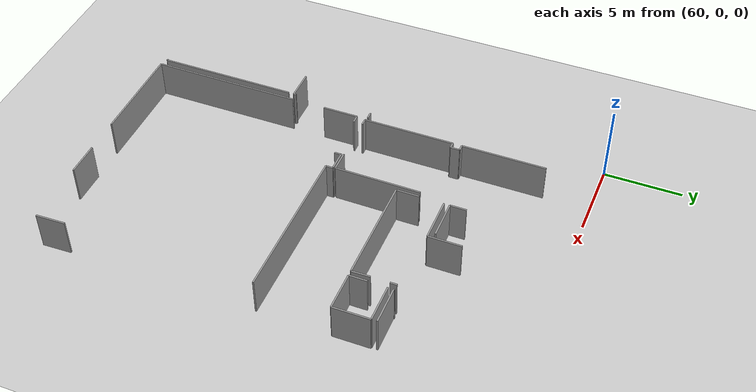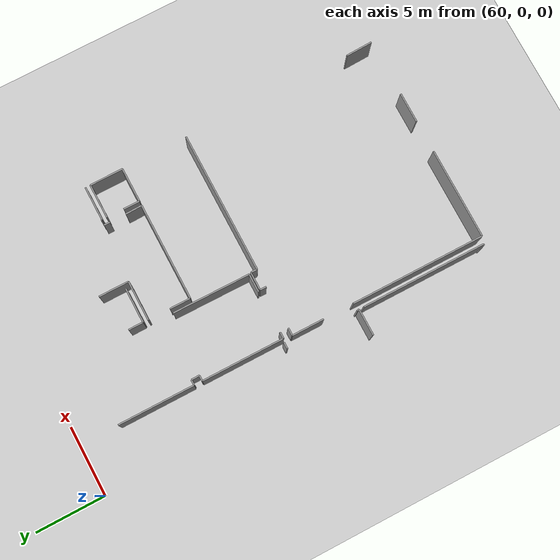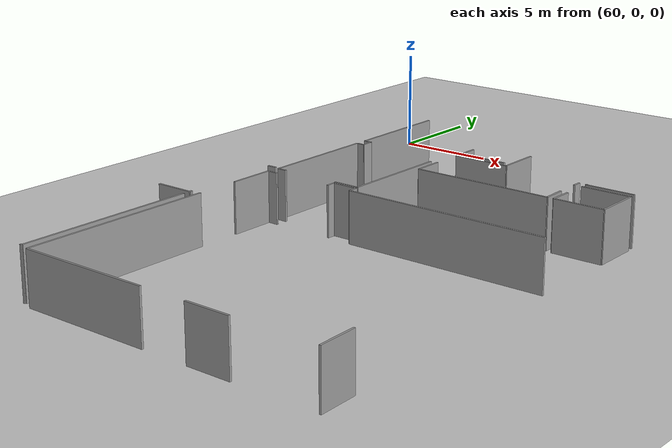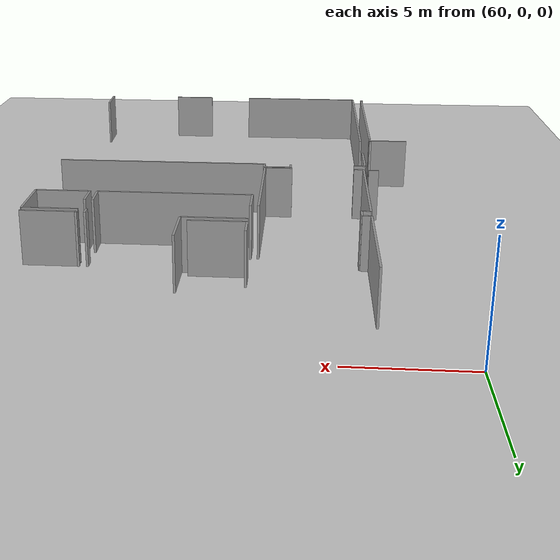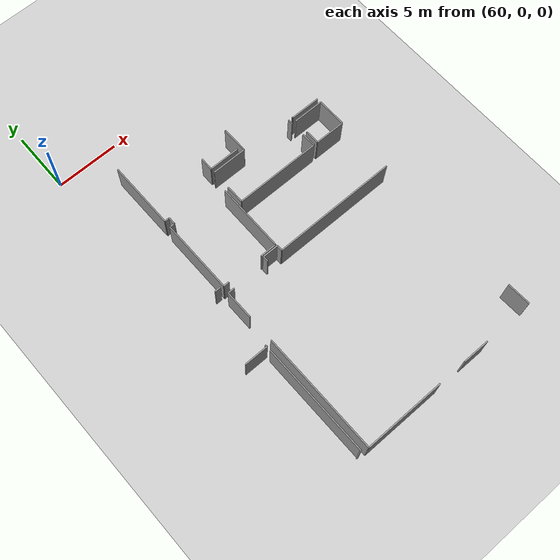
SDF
<sdf version="1.6">
 <world name="default">
  <model name="ground_plane">
   <static>1</static>
   <link name="link">
    <collision name="collision">
     <geometry><plane><normal>0 0 1</normal><size>100 100</size></plane></geometry>
     <surface><friction><ode><mu>100</mu><mu2>50</mu2></ode></friction></surface>
    </collision>
    <visual name="visual">
     <cast_shadows>0</cast_shadows>
     <geometry><plane><normal>0 0 1</normal><size>100 100</size></plane></geometry>
     <material>
      <script><uri>file://media/materials/scripts/gazebo.material</uri><name>Gazebo/Grey</name></script>
     </material>
    </visual>
   </link>
  </model>
  <model name="50010535_PLAN2">
   <static>1</static>
   <link name="Wall_360">
    <collision name="Wall_360_Collision">
     <geometry><box><size>0.478771052648 0.1 2.5</size></box></geometry>
     <pose>0.239385526324 0 1.25 0 0 0</pose>
    </collision>
    <visual name="Wall_360_Visual">
     <pose>0.239385526324 0 1.25 0 0 0</pose>
     <geometry><box><size>0.478771052648 0.1 2.5</size></box></geometry>
     <material>
      <script><uri>file://media/materials/scripts/gazebo.material</uri><name>Gazebo/Grey</name></script>
      <ambient>1 1 1 1</ambient>
     </material>
    </visual>
    <pose>165.815924728 -44.5561774553 0 0 0 3.14159265359</pose>
   </link>
   <link name="Wall_444">
    <collision name="Wall_444_Collision">
     <geometry><box><size>1.31407914716 0.1 2.5</size></box></geometry>
     <pose>0.657039573579 0 1.25 0 0 0</pose>
    </collision>
    <visual name="Wall_444_Visual">
     <pose>0.657039573579 0 1.25 0 0 0</pose>
     <geometry><box><size>1.31407914716 0.1 2.5</size></box></geometry>
     <material>
      <script><uri>file://media/materials/scripts/gazebo.material</uri><name>Gazebo/Grey</name></script>
      <ambient>1 1 1 1</ambient>
     </material>
    </visual>
    <pose>170.780506089 -44.6415633755 0 0 0 3.14159265359</pose>
   </link>
   <link name="Wall_445">
    <collision name="Wall_445_Collision">
     <geometry><box><size>0.46403181642 0.1 2.5</size></box></geometry>
     <pose>0.23201590821 0 1.25 0 0 0</pose>
    </collision>
    <visual name="Wall_445_Visual">
     <pose>0.23201590821 0 1.25 0 0 0</pose>
     <geometry><box><size>0.46403181642 0.1 2.5</size></box></geometry>
     <material>
      <script><uri>file://media/materials/scripts/gazebo.material</uri><name>Gazebo/Grey</name></script>
      <ambient>1 1 1 1</ambient>
     </material>
    </visual>
    <pose>166.512226578 -44.6415633755 0 0 0 3.14159265359</pose>
   </link>
   <link name="Wall_446">
    <collision name="Wall_446_Collision">
     <geometry><box><size>5.86926551591 0.1 2.5</size></box></geometry>
     <pose>2.93463275795 0 1.25 0 0 0</pose>
    </collision>
    <visual name="Wall_446_Visual">
     <pose>2.93463275795 0 1.25 0 0 0</pose>
     <geometry><box><size>5.86926551591 0.1 2.5</size></box></geometry>
     <material>
      <script><uri>file://media/materials/scripts/gazebo.material</uri><name>Gazebo/Grey</name></script>
      <ambient>1 1 1 1</ambient>
     </material>
    </visual>
    <pose>166.048194761 -44.6415633755 0 0 0 1.57079632679</pose>
   </link>
   <link name="Wall_447">
    <collision name="Wall_447_Collision">
     <geometry><box><size>0.399230001969 0.1 2.5</size></box></geometry>
     <pose>0.199615000985 0 1.25 0 0 0</pose>
    </collision>
    <visual name="Wall_447_Visual">
     <pose>0.199615000985 0 1.25 0 0 0</pose>
     <geometry><box><size>0.399230001969 0.1 2.5</size></box></geometry>
     <material>
      <script><uri>file://media/materials/scripts/gazebo.material</uri><name>Gazebo/Grey</name></script>
      <ambient>1 1 1 1</ambient>
     </material>
    </visual>
    <pose>166.048194761 -38.7722978596 0 0 0 0.0</pose>
   </link>
   <link name="Wall_448">
    <collision name="Wall_448_Collision">
     <geometry><box><size>0.587536451021 0.1 2.5</size></box></geometry>
     <pose>0.29376822551 0 1.25 0 0 0</pose>
    </collision>
    <visual name="Wall_448_Visual">
     <pose>0.29376822551 0 1.25 0 0 0</pose>
     <geometry><box><size>0.587536451021 0.1 2.5</size></box></geometry>
     <material>
      <script><uri>file://media/materials/scripts/gazebo.material</uri><name>Gazebo/Grey</name></script>
      <ambient>1 1 1 1</ambient>
     </material>
    </visual>
    <pose>166.447424763 -38.7722978596 0 0 0 1.57079632679</pose>
   </link>
   <link name="Wall_449">
    <collision name="Wall_449_Collision">
     <geometry><box><size>0.392368633381 0.1 2.5</size></box></geometry>
     <pose>0.19618431669 0 1.25 0 0 0</pose>
    </collision>
    <visual name="Wall_449_Visual">
     <pose>0.19618431669 0 1.25 0 0 0</pose>
     <geometry><box><size>0.392368633381 0.1 2.5</size></box></geometry>
     <material>
      <script><uri>file://media/materials/scripts/gazebo.material</uri><name>Gazebo/Grey</name></script>
      <ambient>1 1 1 1</ambient>
     </material>
    </visual>
    <pose>166.447424763 -38.1847614086 0 0 0 3.14159265359</pose>
   </link>
   <link name="Wall_450">
    <collision name="Wall_450_Collision">
     <geometry><box><size>5.41971881095 0.1 2.5</size></box></geometry>
     <pose>2.70985940548 0 1.25 0 0 0</pose>
    </collision>
    <visual name="Wall_450_Visual">
     <pose>2.70985940548 0 1.25 0 0 0</pose>
     <geometry><box><size>5.41971881095 0.1 2.5</size></box></geometry>
     <material>
      <script><uri>file://media/materials/scripts/gazebo.material</uri><name>Gazebo/Grey</name></script>
      <ambient>1 1 1 1</ambient>
     </material>
    </visual>
    <pose>166.05505613 -38.1847614086 0 0 0 1.57079632679</pose>
   </link>
   <link name="Wall_471">
    <collision name="Wall_471_Collision">
     <geometry><box><size>5.51260439163 0.1 2.5</size></box></geometry>
     <pose>2.75630219582 0 1.25 0 0 0</pose>
    </collision>
    <visual name="Wall_471_Visual">
     <pose>2.75630219582 0 1.25 0 0 0</pose>
     <geometry><box><size>5.51260439163 0.1 2.5</size></box></geometry>
     <material>
      <script><uri>file://media/materials/scripts/gazebo.material</uri><name>Gazebo/Grey</name></script>
      <ambient>1 1 1 1</ambient>
     </material>
    </visual>
    <pose>170.818370679 -39.1290890263 0 0 0 -1.57766511053</pose>
   </link>
   <link name="Wall_512">
    <collision name="Wall_512_Collision">
     <geometry><box><size>2.48457780347 0.1 2.5</size></box></geometry>
     <pose>1.24228890174 0 1.25 0 0 0</pose>
    </collision>
    <visual name="Wall_512_Visual">
     <pose>1.24228890174 0 1.25 0 0 0</pose>
     <geometry><box><size>2.48457780347 0.1 2.5</size></box></geometry>
     <material>
      <script><uri>file://media/materials/scripts/gazebo.material</uri><name>Gazebo/Grey</name></script>
      <ambient>1 1 1 1</ambient>
     </material>
    </visual>
    <pose>173.668634016 -37.1385297612 0 0 0 3.14159265359</pose>
   </link>
   <link name="Wall_513">
    <collision name="Wall_513_Collision">
     <geometry><box><size>1.04623164743 0.1 2.5</size></box></geometry>
     <pose>0.523115823714 0 1.25 0 0 0</pose>
    </collision>
    <visual name="Wall_513_Visual">
     <pose>0.523115823714 0 1.25 0 0 0</pose>
     <geometry><box><size>1.04623164743 0.1 2.5</size></box></geometry>
     <material>
      <script><uri>file://media/materials/scripts/gazebo.material</uri><name>Gazebo/Grey</name></script>
      <ambient>1 1 1 1</ambient>
     </material>
    </visual>
    <pose>171.184056212 -37.1385297612 0 0 0 1.57079632679</pose>
   </link>
   <link name="Wall_517">
    <collision name="Wall_517_Collision">
     <geometry><box><size>6.95590300058 0.1 2.5</size></box></geometry>
     <pose>3.47795150029 0 1.25 0 0 0</pose>
    </collision>
    <visual name="Wall_517_Visual">
     <pose>3.47795150029 0 1.25 0 0 0</pose>
     <geometry><box><size>6.95590300058 0.1 2.5</size></box></geometry>
     <material>
      <script><uri>file://media/materials/scripts/gazebo.material</uri><name>Gazebo/Grey</name></script>
      <ambient>1 1 1 1</ambient>
     </material>
    </visual>
    <pose>178.115563236 -40.5399897079 0 0 0 3.14159265359</pose>
   </link>
   <link name="Wall_518">
    <collision name="Wall_518_Collision">
     <geometry><box><size>1.47951436758 0.1 2.5</size></box></geometry>
     <pose>0.739757183789 0 1.25 0 0 0</pose>
    </collision>
    <visual name="Wall_518_Visual">
     <pose>0.739757183789 0 1.25 0 0 0</pose>
     <geometry><box><size>1.47951436758 0.1 2.5</size></box></geometry>
     <material>
      <script><uri>file://media/materials/scripts/gazebo.material</uri><name>Gazebo/Grey</name></script>
      <ambient>1 1 1 1</ambient>
     </material>
    </visual>
    <pose>171.159660235 -40.5399897079 0 0 0 1.57079632679</pose>
   </link>
   <link name="Wall_519">
    <collision name="Wall_519_Collision">
     <geometry><box><size>2.84365609296 0.1 2.5</size></box></geometry>
     <pose>1.42182804648 0 1.25 0 0 0</pose>
    </collision>
    <visual name="Wall_519_Visual">
     <pose>1.42182804648 0 1.25 0 0 0</pose>
     <geometry><box><size>2.84365609296 0.1 2.5</size></box></geometry>
     <material>
      <script><uri>file://media/materials/scripts/gazebo.material</uri><name>Gazebo/Grey</name></script>
      <ambient>1 1 1 1</ambient>
     </material>
    </visual>
    <pose>171.159660235 -37.5039611697 0 0 0 0.0</pose>
   </link>
   <link name="Wall_520">
    <collision name="Wall_520_Collision">
     <geometry><box><size>2.1328691321 0.1 2.5</size></box></geometry>
     <pose>1.06643456605 0 1.25 0 0 0</pose>
    </collision>
    <visual name="Wall_520_Visual">
     <pose>1.06643456605 0 1.25 0 0 0</pose>
     <geometry><box><size>2.1328691321 0.1 2.5</size></box></geometry>
     <material>
      <script><uri>file://media/materials/scripts/gazebo.material</uri><name>Gazebo/Grey</name></script>
      <ambient>1 1 1 1</ambient>
     </material>
    </visual>
    <pose>174.003316328 -37.5039611697 0 0 0 1.57079632679</pose>
   </link>
   <link name="Wall_523">
    <collision name="Wall_523_Collision">
     <geometry><box><size>0.428454349663 0.1 2.5</size></box></geometry>
     <pose>0.214227174831 0 1.25 0 0 0</pose>
    </collision>
    <visual name="Wall_523_Visual">
     <pose>0.214227174831 0 1.25 0 0 0</pose>
     <geometry><box><size>0.428454349663 0.1 2.5</size></box></geometry>
     <material>
      <script><uri>file://media/materials/scripts/gazebo.material</uri><name>Gazebo/Grey</name></script>
      <ambient>1 1 1 1</ambient>
     </material>
    </visual>
    <pose>178.085576514 -37.7715545447 0 0 0 -1.57079632679</pose>
   </link>
   <link name="Wall_524">
    <collision name="Wall_524_Collision">
     <geometry><box><size>1.18002821862 0.1 2.5</size></box></geometry>
     <pose>0.590014109308 0 1.25 0 0 0</pose>
    </collision>
    <visual name="Wall_524_Visual">
     <pose>0.590014109308 0 1.25 0 0 0</pose>
     <geometry><box><size>1.18002821862 0.1 2.5</size></box></geometry>
     <material>
      <script><uri>file://media/materials/scripts/gazebo.material</uri><name>Gazebo/Grey</name></script>
      <ambient>1 1 1 1</ambient>
     </material>
    </visual>
    <pose>178.085576514 -39.3603425602 0 0 0 -1.54538172244</pose>
   </link>
   <link name="Wall_525">
    <collision name="Wall_525_Collision">
     <geometry><box><size>2.4456967148 0.1 2.5</size></box></geometry>
     <pose>1.2228483574 0 1.25 0 0 0</pose>
    </collision>
    <visual name="Wall_525_Visual">
     <pose>1.2228483574 0 1.25 0 0 0</pose>
     <geometry><box><size>2.4456967148 0.1 2.5</size></box></geometry>
     <material>
      <script><uri>file://media/materials/scripts/gazebo.material</uri><name>Gazebo/Grey</name></script>
      <ambient>1 1 1 1</ambient>
     </material>
    </visual>
    <pose>180.910427374 -37.8223794972 0 0 0 3.14159265359</pose>
   </link>
   <link name="Wall_526">
    <collision name="Wall_526_Collision">
     <geometry><box><size>0.0764915535282 0.1 2.5</size></box></geometry>
     <pose>0.0382457767641 0 1.25 0 0 0</pose>
    </collision>
    <visual name="Wall_526_Visual">
     <pose>0.0382457767641 0 1.25 0 0 0</pose>
     <geometry><box><size>0.0764915535282 0.1 2.5</size></box></geometry>
     <material>
      <script><uri>file://media/materials/scripts/gazebo.material</uri><name>Gazebo/Grey</name></script>
      <ambient>1 1 1 1</ambient>
     </material>
    </visual>
    <pose>178.46473066 -37.8223794972 0 0 0 1.57079632679</pose>
   </link>
   <link name="Wall_530">
    <collision name="Wall_530_Collision">
     <geometry><box><size>2.47009269201 0.1 2.5</size></box></geometry>
     <pose>1.235046346 0 1.25 0 0 0</pose>
    </collision>
    <visual name="Wall_530_Visual">
     <pose>1.235046346 0 1.25 0 0 0</pose>
     <geometry><box><size>2.47009269201 0.1 2.5</size></box></geometry>
     <material>
      <script><uri>file://media/materials/scripts/gazebo.material</uri><name>Gazebo/Grey</name></script>
      <ambient>1 1 1 1</ambient>
     </material>
    </visual>
    <pose>180.919067616 -40.5384649594 0 0 0 3.14159265359</pose>
   </link>
   <link name="Wall_531">
    <collision name="Wall_531_Collision">
     <geometry><box><size>1.14788155245 0.1 2.5</size></box></geometry>
     <pose>0.573940776224 0 1.25 0 0 0</pose>
    </collision>
    <visual name="Wall_531_Visual">
     <pose>0.573940776224 0 1.25 0 0 0</pose>
     <geometry><box><size>1.14788155245 0.1 2.5</size></box></geometry>
     <material>
      <script><uri>file://media/materials/scripts/gazebo.material</uri><name>Gazebo/Grey</name></script>
      <ambient>1 1 1 1</ambient>
     </material>
    </visual>
    <pose>178.448974924 -40.5384649594 0 0 0 1.57079632679</pose>
   </link>
   <link name="Wall_532">
    <collision name="Wall_532_Collision">
     <geometry><box><size>2.46145245008 0.1 2.5</size></box></geometry>
     <pose>1.23072622504 0 1.25 0 0 0</pose>
    </collision>
    <visual name="Wall_532_Visual">
     <pose>1.23072622504 0 1.25 0 0 0</pose>
     <geometry><box><size>2.46145245008 0.1 2.5</size></box></geometry>
     <material>
      <script><uri>file://media/materials/scripts/gazebo.material</uri><name>Gazebo/Grey</name></script>
      <ambient>1 1 1 1</ambient>
     </material>
    </visual>
    <pose>178.448974924 -38.1758670419 0 0 0 0.0</pose>
   </link>
   <link name="Wall_533">
    <collision name="Wall_533_Collision">
     <geometry><box><size>2.36261371648 0.1 2.5</size></box></geometry>
     <pose>1.18130685824 0 1.25 0 0 0</pose>
    </collision>
    <visual name="Wall_533_Visual">
     <pose>1.18130685824 0 1.25 0 0 0</pose>
     <geometry><box><size>2.36261371648 0.1 2.5</size></box></geometry>
     <material>
      <script><uri>file://media/materials/scripts/gazebo.material</uri><name>Gazebo/Grey</name></script>
      <ambient>1 1 1 1</ambient>
     </material>
    </visual>
    <pose>180.910427374 -38.1758670419 0 0 0 -1.56713924941</pose>
   </link>
   <link name="Wall_535">
    <collision name="Wall_535_Collision">
     <geometry><box><size>2.16488885218 0.1 2.5</size></box></geometry>
     <pose>1.08244442609 0 1.25 0 0 0</pose>
    </collision>
    <visual name="Wall_535_Visual">
     <pose>1.08244442609 0 1.25 0 0 0</pose>
     <geometry><box><size>2.16488885218 0.1 2.5</size></box></geometry>
     <material>
      <script><uri>file://media/materials/scripts/gazebo.material</uri><name>Gazebo/Grey</name></script>
      <ambient>1 1 1 1</ambient>
     </material>
    </visual>
    <pose>176.894239627 -59.2567867194 0 0 0 3.14159265359</pose>
   </link>
   <link name="Wall_536">
    <collision name="Wall_536_Collision">
     <geometry><box><size>6.46569633361 0.1 2.5</size></box></geometry>
     <pose>3.23284816681 0 1.25 0 0 0</pose>
    </collision>
    <visual name="Wall_536_Visual">
     <pose>3.23284816681 0 1.25 0 0 0</pose>
     <geometry><box><size>6.46569633361 0.1 2.5</size></box></geometry>
     <material>
      <script><uri>file://media/materials/scripts/gazebo.material</uri><name>Gazebo/Grey</name></script>
      <ambient>1 1 1 1</ambient>
     </material>
    </visual>
    <pose>172.419102558 -59.2567867194 0 0 0 3.14159265359</pose>
   </link>
   <link name="Wall_537">
    <collision name="Wall_537_Collision">
     <geometry><box><size>9.56830555961 0.1 2.5</size></box></geometry>
     <pose>4.78415277981 0 1.25 0 0 0</pose>
    </collision>
    <visual name="Wall_537_Visual">
     <pose>4.78415277981 0 1.25 0 0 0</pose>
     <geometry><box><size>9.56830555961 0.1 2.5</size></box></geometry>
     <material>
      <script><uri>file://media/materials/scripts/gazebo.material</uri><name>Gazebo/Grey</name></script>
      <ambient>1 1 1 1</ambient>
     </material>
    </visual>
    <pose>165.953406225 -59.2567867194 0 0 0 1.57079632679</pose>
   </link>
   <link name="Wall_538">
    <collision name="Wall_538_Collision">
     <geometry><box><size>2.28534398963 0.1 2.5</size></box></geometry>
     <pose>1.14267199482 0 1.25 0 0 0</pose>
    </collision>
    <visual name="Wall_538_Visual">
     <pose>1.14267199482 0 1.25 0 0 0</pose>
     <geometry><box><size>2.28534398963 0.1 2.5</size></box></geometry>
     <material>
      <script><uri>file://media/materials/scripts/gazebo.material</uri><name>Gazebo/Grey</name></script>
      <ambient>1 1 1 1</ambient>
     </material>
    </visual>
    <pose>165.953406225 -47.5167309391 0 0 0 1.57079632679</pose>
   </link>
   <link name="Wall_539">
    <collision name="Wall_539_Collision">
     <geometry><box><size>0.537982122323 0.1 2.5</size></box></geometry>
     <pose>0.268991061161 0 1.25 0 0 0</pose>
    </collision>
    <visual name="Wall_539_Visual">
     <pose>0.268991061161 0 1.25 0 0 0</pose>
     <geometry><box><size>0.537982122323 0.1 2.5</size></box></geometry>
     <material>
      <script><uri>file://media/materials/scripts/gazebo.material</uri><name>Gazebo/Grey</name></script>
      <ambient>1 1 1 1</ambient>
     </material>
    </visual>
    <pose>165.953406225 -45.2313869494 0 0 0 0.0</pose>
   </link>
   <link name="Wall_540">
    <collision name="Wall_540_Collision">
     <geometry><box><size>0.444718334466 0.1 2.5</size></box></geometry>
     <pose>0.222359167233 0 1.25 0 0 0</pose>
    </collision>
    <visual name="Wall_540_Visual">
     <pose>0.222359167233 0 1.25 0 0 0</pose>
     <geometry><box><size>0.444718334466 0.1 2.5</size></box></geometry>
     <material>
      <script><uri>file://media/materials/scripts/gazebo.material</uri><name>Gazebo/Grey</name></script>
      <ambient>1 1 1 1</ambient>
     </material>
    </visual>
    <pose>169.545459743 -45.2313869494 0 0 0 1.57079632679</pose>
   </link>
   <link name="Wall_541">
    <collision name="Wall_541_Collision">
     <geometry><box><size>1.28739604709 0.1 2.5</size></box></geometry>
     <pose>0.643698023545 0 1.25 0 0 0</pose>
    </collision>
    <visual name="Wall_541_Visual">
     <pose>0.643698023545 0 1.25 0 0 0</pose>
     <geometry><box><size>1.28739604709 0.1 2.5</size></box></geometry>
     <material>
      <script><uri>file://media/materials/scripts/gazebo.material</uri><name>Gazebo/Grey</name></script>
      <ambient>1 1 1 1</ambient>
     </material>
    </visual>
    <pose>169.545459743 -44.786668615 0 0 0 0.0</pose>
   </link>
   <link name="Wall_542">
    <collision name="Wall_542_Collision">
     <geometry><box><size>0.461236444032 0.1 2.5</size></box></geometry>
     <pose>0.230618222016 0 1.25 0 0 0</pose>
    </collision>
    <visual name="Wall_542_Visual">
     <pose>0.230618222016 0 1.25 0 0 0</pose>
     <geometry><box><size>0.461236444032 0.1 2.5</size></box></geometry>
     <material>
      <script><uri>file://media/materials/scripts/gazebo.material</uri><name>Gazebo/Grey</name></script>
      <ambient>1 1 1 1</ambient>
     </material>
    </visual>
    <pose>170.832855791 -44.786668615 0 0 0 -1.57079632679</pose>
   </link>
   <link name="Wall_543">
    <collision name="Wall_543_Collision">
     <geometry><box><size>10.0872283247 0.1 2.5</size></box></geometry>
     <pose>5.04361416237 0 1.25 0 0 0</pose>
    </collision>
    <visual name="Wall_543_Visual">
     <pose>5.04361416237 0 1.25 0 0 0</pose>
     <geometry><box><size>10.0872283247 0.1 2.5</size></box></geometry>
     <material>
      <script><uri>file://media/materials/scripts/gazebo.material</uri><name>Gazebo/Grey</name></script>
      <ambient>1 1 1 1</ambient>
     </material>
    </visual>
    <pose>170.832855791 -45.247905059 0 0 0 0.0</pose>
   </link>
   <link name="Wall_546">
    <collision name="Wall_546_Collision">
     <geometry><box><size>1.89108935956 0.1 2.5</size></box></geometry>
     <pose>0.945544679782 0 1.25 0 0 0</pose>
    </collision>
    <visual name="Wall_546_Visual">
     <pose>0.945544679782 0 1.25 0 0 0</pose>
     <geometry><box><size>1.89108935956 0.1 2.5</size></box></geometry>
     <material>
      <script><uri>file://media/materials/scripts/gazebo.material</uri><name>Gazebo/Grey</name></script>
      <ambient>1 1 1 1</ambient>
     </material>
    </visual>
    <pose>180.920084115 -57.3668608603 0 0 0 -1.53571592797</pose>
   </link>
   <link name="Wall_572">
    <collision name="Wall_572_Collision">
     <geometry><box><size>1.91178058868 0.1 2.5</size></box></geometry>
     <pose>0.95589029434 0 1.25 0 0 0</pose>
    </collision>
    <visual name="Wall_572_Visual">
     <pose>0.95589029434 0 1.25 0 0 0</pose>
     <geometry><box><size>1.91178058868 0.1 2.5</size></box></geometry>
     <material>
      <script><uri>file://media/materials/scripts/gazebo.material</uri><name>Gazebo/Grey</name></script>
      <ambient>1 1 1 1</ambient>
     </material>
    </visual>
    <pose>165.458625312 -49.8457843878 0 0 0 3.14159265359</pose>
   </link>
   <link name="Wall_578">
    <collision name="Wall_578_Collision">
     <geometry><box><size>0.159733131027 0.1 2.5</size></box></geometry>
     <pose>0.0798665655135 0 1.25 0 0 0</pose>
    </collision>
    <visual name="Wall_578_Visual">
     <pose>0.0798665655135 0 1.25 0 0 0</pose>
     <geometry><box><size>0.159733131027 0.1 2.5</size></box></geometry>
     <material>
      <script><uri>file://media/materials/scripts/gazebo.material</uri><name>Gazebo/Grey</name></script>
      <ambient>1 1 1 1</ambient>
     </material>
    </visual>
    <pose>165.42330197 -49.6900059084 0 0 0 -1.34781334384</pose>
   </link>
   <link name="Wall_583">
    <collision name="Wall_583_Collision">
     <geometry><box><size>8.87174958546 0.1 2.5</size></box></geometry>
     <pose>4.43587479273 0 1.25 0 0 0</pose>
    </collision>
    <visual name="Wall_583_Visual">
     <pose>4.43587479273 0 1.25 0 0 0</pose>
     <geometry><box><size>8.87174958546 0.1 2.5</size></box></geometry>
     <material>
      <script><uri>file://media/materials/scripts/gazebo.material</uri><name>Gazebo/Grey</name></script>
      <ambient>1 1 1 1</ambient>
     </material>
    </visual>
    <pose>165.444902575 -50.1974930592 0 0 0 -1.57079632679</pose>
   </link>
   <link name="Wall_584">
    <collision name="Wall_584_Collision">
     <geometry><box><size>0.106732400272 0.1 2.5</size></box></geometry>
     <pose>0.053366200136 0 1.25 0 0 0</pose>
    </collision>
    <visual name="Wall_584_Visual">
     <pose>0.053366200136 0 1.25 0 0 0</pose>
     <geometry><box><size>0.106732400272 0.1 2.5</size></box></geometry>
     <material>
      <script><uri>file://media/materials/scripts/gazebo.material</uri><name>Gazebo/Grey</name></script>
      <ambient>1 1 1 1</ambient>
     </material>
    </visual>
    <pose>165.444902575 -59.0692426447 0 0 0 3.14159265359</pose>
   </link>
   <pose>-102.6 29.7873404573 0 0 0 0</pose>
  </model>
 </world>
</sdf>
